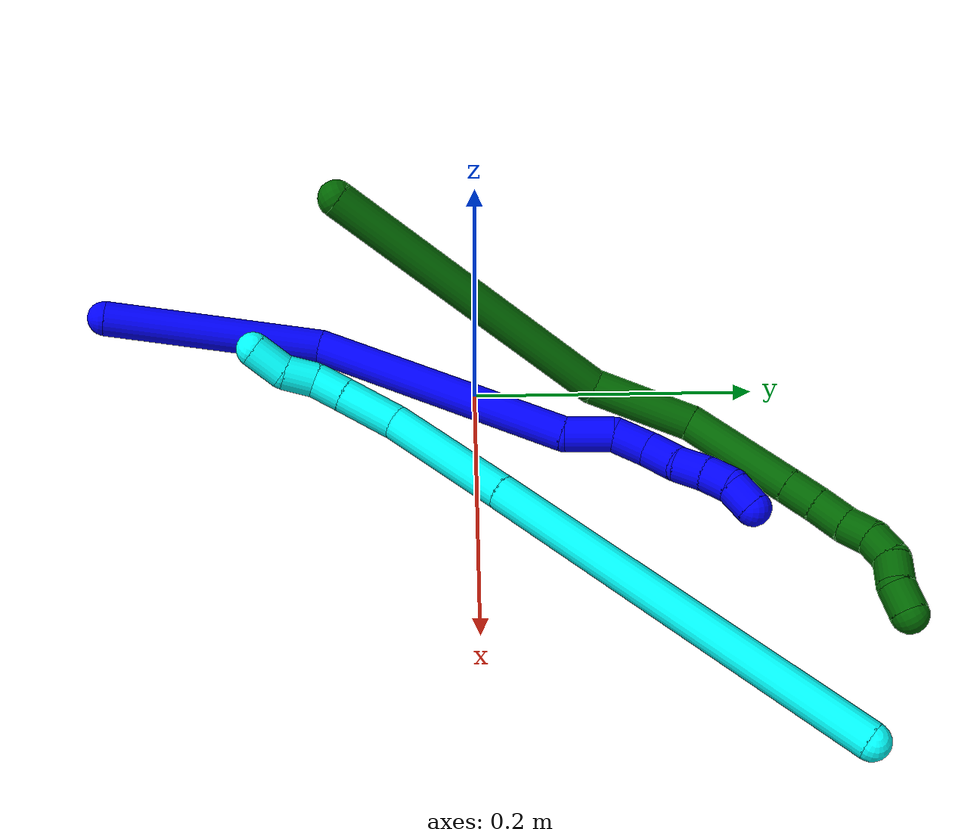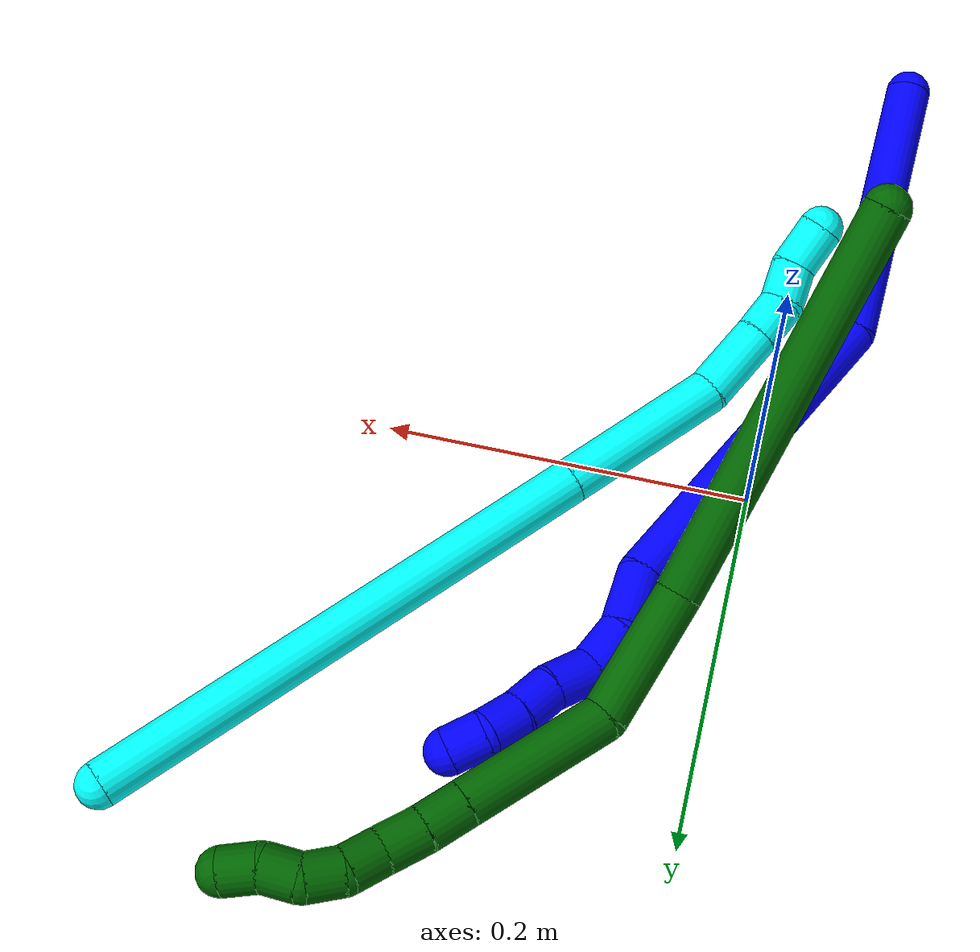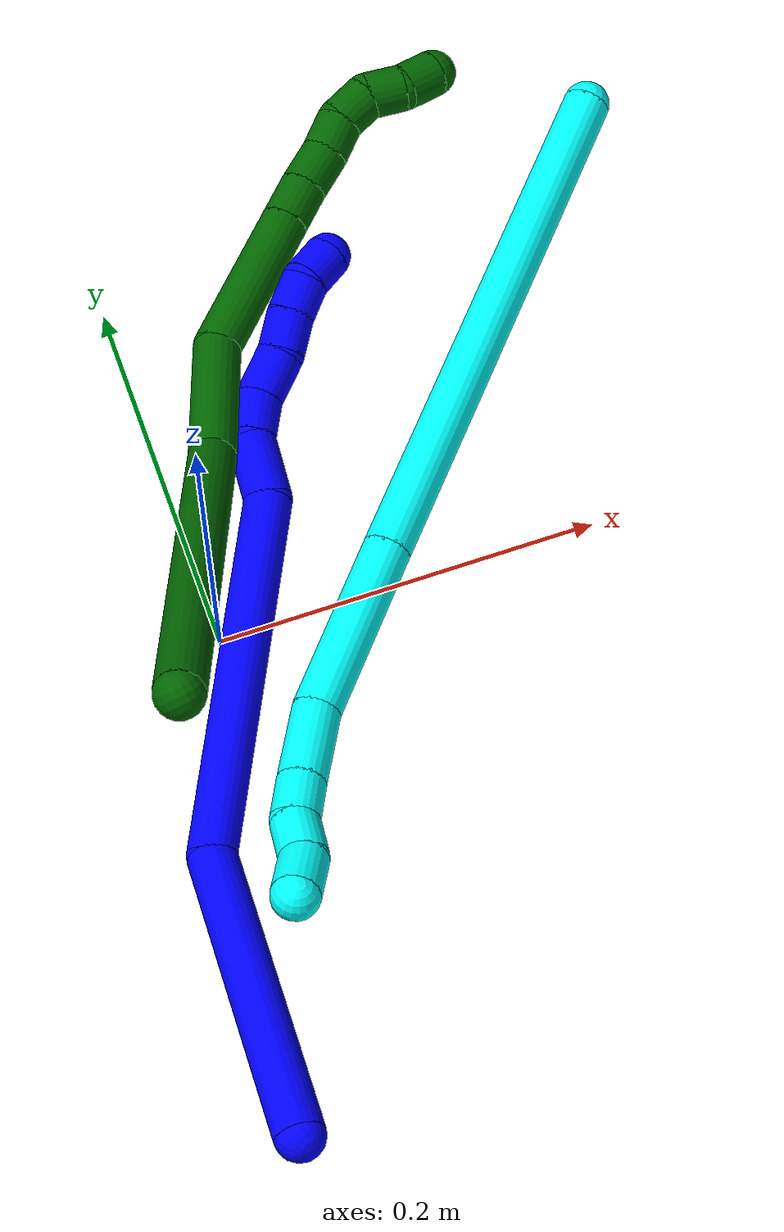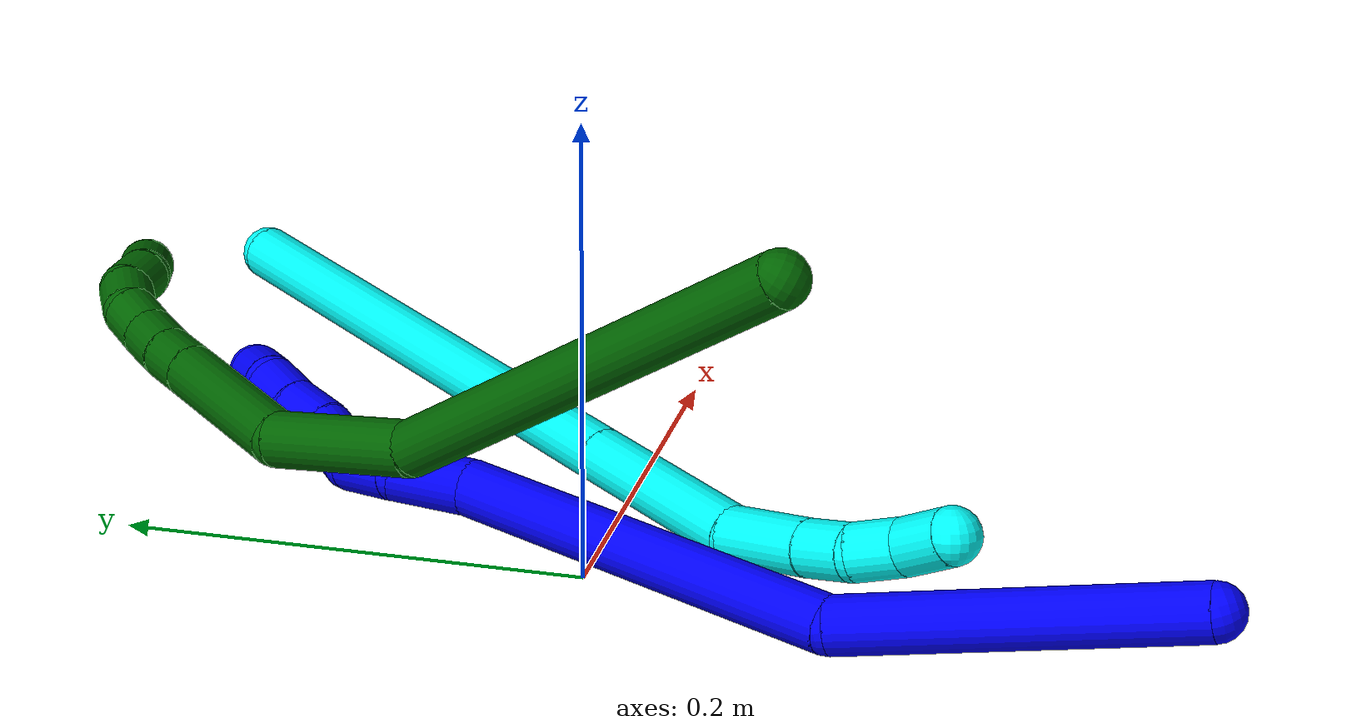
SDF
<sdf version="1.7">
 <world name="default">
  <model name="photoneo_s_sensor">
   <static>1</static>
   <pose>0 0 2 1.57079 1.57079 3.14159</pose>
   <link name="link">
    <inertial><mass>0.1</mass></inertial>
    <sensor name="sensor" type="depth">
     <update_rate>30</update_rate>
     <camera>
      <horizontal_fov>1.22</horizontal_fov>
      <image><width>1920</width><height>1200</height><format>B8G8R8</format></image>
      <clip><near>0.1</near><far>4</far></clip>
      <depth_camera><output>points</output></depth_camera>
     </camera>
     <plugin name="camera_plugin" filename="libgazebo_ros_depth_camera.so">
      <baseline>0.2</baseline>
      <alwaysOn>1</alwaysOn>
      <updateRate>0.0</updateRate>
      <cameraName>camera_ir</cameraName>
      <imageTopicName>/camera/color/image_raw</imageTopicName>
      <cameraInfoTopicName>/camera/color/camera_info</cameraInfoTopicName>
      <depthImageTopicName>/camera/depth/image_raw</depthImageTopicName>
      <depthImageCameraInfoTopicName>/camera/depth/camera_info</depthImageCameraInfoTopicName>
      <pointCloudTopicName>/camera/depth/points</pointCloudTopicName>
      <frameName>fr_optical</frameName>
      <pointCloudCutoff>0.1</pointCloudCutoff>
      <pointCloudCutoffMax>2.0</pointCloudCutoffMax>
      <distortionK1>0</distortionK1>
      <distortionK2>0</distortionK2>
      <distortionK3>0</distortionK3>
      <distortionT1>0</distortionT1>
      <distortionT2>0</distortionT2>
      <CxPrime>0</CxPrime>
      <Cx>0</Cx>
      <Cy>0</Cy>
      <focalLength>0</focalLength>
      <hackBaseline>0</hackBaseline>
     </plugin>
    </sensor>
   </link>
  </model>
  <model name="bin">
   <static>1</static>
   <link name="bottom">
    <collision name="collision-bottom">
     <pose>0 0 -0.01 0 -0 0</pose>
     <geometry><box><size>0.8 0.6 0.02</size></box></geometry>
     <surface>
      <friction><ode><mu>100</mu><mu2>100</mu2></ode></friction>
      <contact><collide_bitmask>65535</collide_bitmask></contact>
     </surface>
    </collision>
   </link>
   <link name="west_wall">
    <collision name="collision-west_wall">
     <pose>-0.41 0 0.1 0 -0 0</pose>
     <geometry><box><size>0.02 0.6 0.2</size></box></geometry>
     <surface>
      <friction><ode><mu>100</mu><mu2>100</mu2></ode></friction>
      <contact><collide_bitmask>65535</collide_bitmask></contact>
     </surface>
    </collision>
   </link>
   <link name="east_wall">
    <collision name="collision-east_wall">
     <pose>0.41 0 0.1 0 -0 0</pose>
     <geometry><box><size>0.02 0.6 0.2</size></box></geometry>
     <surface>
      <friction><ode><mu>100</mu><mu2>100</mu2></ode></friction>
      <contact><collide_bitmask>65535</collide_bitmask></contact>
     </surface>
    </collision>
   </link>
   <link name="south_wall">
    <collision name="collision-south_wall">
     <pose>0 -0.31 0.1 0 -0 0</pose>
     <geometry><box><size>0.8 0.02 0.2</size></box></geometry>
     <surface>
      <friction><ode><mu>100</mu><mu2>100</mu2></ode></friction>
      <contact><collide_bitmask>65535</collide_bitmask></contact>
     </surface>
    </collision>
   </link>
   <link name="north_wall">
    <collision name="collision-north_wall">
     <pose>0 0.31 0.1 0 -0 0</pose>
     <geometry><box><size>0.8 0.02 0.2</size></box></geometry>
     <surface>
      <friction><ode><mu>100</mu><mu2>100</mu2></ode></friction>
      <contact><collide_bitmask>65535</collide_bitmask></contact>
     </surface>
    </collision>
   </link>
  </model>
  <model name="1">
   <static>0</static>
   <link name="1">
    <collision name="collision-cylinder-e_1_1_4">
     <pose>0.012643 0.027854 -0.071792 -2.77149 0.162729 -0.821664</pose>
     <geometry><cylinder><radius>0.0125</radius><length>0.156074</length></cylinder></geometry>
     <surface>
      <friction><ode><mu>1.16</mu><mu2>1.16</mu2><slip1>0</slip1><slip2>0</slip2></ode></friction>
      <contact><ode><kp>1e+06</kp><kd>1</kd><max_vel>0</max_vel><min_depth>0.001</min_depth></ode></contact>
     </surface>
    </collision>
    <visual name="visual-cylinder-e_1_1_4">
     <pose>0.012643 0.027854 -0.071792 -2.77149 0.162729 -0.821664</pose>
     <geometry><cylinder><radius>0.0125</radius><length>0.156074</length></cylinder></geometry>
     <material><ambient>0 0 1 1</ambient></material>
    </visual>
    <collision name="collision-cylinder-e_2_4_5">
     <pose>0.050913 0.124918 -0.206836 -2.31124 0.266813 -0.59108</pose>
     <geometry><cylinder><radius>0.0125</radius><length>0.194398</length></cylinder></geometry>
     <surface>
      <friction><ode><mu>1.16</mu><mu2>1.16</mu2><slip1>0</slip1><slip2>0</slip2></ode></friction>
      <contact><ode><kp>1e+06</kp><kd>1</kd><max_vel>0</max_vel><min_depth>0.001</min_depth></ode></contact>
     </surface>
    </collision>
    <visual name="visual-cylinder-e_2_4_5">
     <pose>0.050913 0.124918 -0.206836 -2.31124 0.266813 -0.59108</pose>
     <geometry><cylinder><radius>0.0125</radius><length>0.194398</length></cylinder></geometry>
     <material><ambient>0 0 1 1</ambient></material>
    </visual>
    <collision name="collision-cylinder-e_3_5_6">
     <pose>0.076388 0.203088 -0.284789 -2.59424 -0.008837 0.031478</pose>
     <geometry><cylinder><radius>0.0125</radius><length>0.034433</length></cylinder></geometry>
     <surface>
      <friction><ode><mu>1.16</mu><mu2>1.16</mu2><slip1>0</slip1><slip2>0</slip2></ode></friction>
      <contact><ode><kp>1e+06</kp><kd>1</kd><max_vel>0</max_vel><min_depth>0.001</min_depth></ode></contact>
     </surface>
    </collision>
    <visual name="visual-cylinder-e_3_5_6">
     <pose>0.076388 0.203088 -0.284789 -2.59424 -0.008837 0.031478</pose>
     <geometry><cylinder><radius>0.0125</radius><length>0.034433</length></cylinder></geometry>
     <material><ambient>0 0 1 1</ambient></material>
    </visual>
    <collision name="collision-cylinder-e_4_6_7">
     <pose>0.080929 0.220459 -0.308475 -2.38922 0.364242 -0.872541</pose>
     <geometry><cylinder><radius>0.0125</radius><length>0.026346</length></cylinder></geometry>
     <surface>
      <friction><ode><mu>1.16</mu><mu2>1.16</mu2><slip1>0</slip1><slip2>0</slip2></ode></friction>
      <contact><ode><kp>1e+06</kp><kd>1</kd><max_vel>0</max_vel><min_depth>0.001</min_depth></ode></contact>
     </surface>
    </collision>
    <visual name="visual-cylinder-e_4_6_7">
     <pose>0.080929 0.220459 -0.308475 -2.38922 0.364242 -0.872541</pose>
     <geometry><cylinder><radius>0.0125</radius><length>0.026346</length></cylinder></geometry>
     <material><ambient>0 0 1 1</ambient></material>
    </visual>
    <collision name="collision-cylinder-e_5_7_8">
     <pose>0.088546 0.24096 -0.321458 -1.89003 0.225786 -0.311229</pose>
     <geometry><cylinder><radius>0.0125</radius><length>0.026129</length></cylinder></geometry>
     <surface>
      <friction><ode><mu>1.16</mu><mu2>1.16</mu2><slip1>0</slip1><slip2>0</slip2></ode></friction>
      <contact><ode><kp>1e+06</kp><kd>1</kd><max_vel>0</max_vel><min_depth>0.001</min_depth></ode></contact>
     </surface>
    </collision>
    <visual name="visual-cylinder-e_5_7_8">
     <pose>0.088546 0.24096 -0.321458 -1.89003 0.225786 -0.311229</pose>
     <geometry><cylinder><radius>0.0125</radius><length>0.026129</length></cylinder></geometry>
     <material><ambient>0 0 1 1</ambient></material>
    </visual>
    <collision name="collision-cylinder-e_6_8_9">
     <pose>0.093443 0.262145 -0.331114 -2.12747 0.182011 -0.325648</pose>
     <geometry><cylinder><radius>0.0125</radius><length>0.021786</length></cylinder></geometry>
     <surface>
      <friction><ode><mu>1.16</mu><mu2>1.16</mu2><slip1>0</slip1><slip2>0</slip2></ode></friction>
      <contact><ode><kp>1e+06</kp><kd>1</kd><max_vel>0</max_vel><min_depth>0.001</min_depth></ode></contact>
     </surface>
    </collision>
    <visual name="visual-cylinder-e_6_8_9">
     <pose>0.093443 0.262145 -0.331114 -2.12747 0.182011 -0.325648</pose>
     <geometry><cylinder><radius>0.0125</radius><length>0.021786</length></cylinder></geometry>
     <material><ambient>0 0 1 1</ambient></material>
    </visual>
    <collision name="collision-cylinder-e_7_9_10">
     <pose>0.097977 0.280249 -0.340765 -1.98781 0.254426 -0.388155</pose>
     <geometry><cylinder><radius>0.0125</radius><length>0.020359</length></cylinder></geometry>
     <surface>
      <friction><ode><mu>1.16</mu><mu2>1.16</mu2><slip1>0</slip1><slip2>0</slip2></ode></friction>
      <contact><ode><kp>1e+06</kp><kd>1</kd><max_vel>0</max_vel><min_depth>0.001</min_depth></ode></contact>
     </surface>
    </collision>
    <visual name="visual-cylinder-e_7_9_10">
     <pose>0.097977 0.280249 -0.340765 -1.98781 0.254426 -0.388155</pose>
     <geometry><cylinder><radius>0.0125</radius><length>0.020359</length></cylinder></geometry>
     <material><ambient>0 0 1 1</ambient></material>
    </visual>
    <collision name="collision-cylinder-e_8_10_2">
     <pose>0.10663 0.296883 -0.347844 -1.95553 0.637193 -0.910263</pose>
     <geometry><cylinder><radius>0.0125</radius><length>0.020474</length></cylinder></geometry>
     <surface>
      <friction><ode><mu>1.16</mu><mu2>1.16</mu2><slip1>0</slip1><slip2>0</slip2></ode></friction>
      <contact><ode><kp>1e+06</kp><kd>1</kd><max_vel>0</max_vel><min_depth>0.001</min_depth></ode></contact>
     </surface>
    </collision>
    <visual name="visual-cylinder-e_8_10_2">
     <pose>0.10663 0.296883 -0.347844 -1.95553 0.637193 -0.910263</pose>
     <geometry><cylinder><radius>0.0125</radius><length>0.020474</length></cylinder></geometry>
     <material><ambient>0 0 1 1</ambient></material>
    </visual>
    <collision name="collision-sphere-2">
     <pose>0.11272 0.30451 -0.350932 0 -0 0</pose>
     <geometry><sphere><radius>0.0125</radius></sphere></geometry>
     <surface>
      <friction><ode><mu>1.16</mu><mu2>1.16</mu2><slip1>0</slip1><slip2>0</slip2></ode></friction>
      <contact><ode><kp>1e+06</kp><kd>1</kd><max_vel>0</max_vel><min_depth>0.001</min_depth></ode></contact>
     </surface>
    </collision>
    <visual name="visual-sphere-2">
     <pose>0.11272 0.30451 -0.350932 0 -0 0</pose>
     <geometry><sphere><radius>0.0125</radius></sphere></geometry>
     <material><ambient>0 0 1 1</ambient></material>
    </visual>
    <collision name="collision-sphere-10">
     <pose>0.100539 0.289257 -0.344756 0 -0 0</pose>
     <geometry><sphere><radius>0.0125</radius></sphere></geometry>
     <surface>
      <friction><ode><mu>1.16</mu><mu2>1.16</mu2><slip1>0</slip1><slip2>0</slip2></ode></friction>
      <contact><ode><kp>1e+06</kp><kd>1</kd><max_vel>0</max_vel><min_depth>0.001</min_depth></ode></contact>
     </surface>
    </collision>
    <visual name="visual-sphere-10">
     <pose>0.100539 0.289257 -0.344756 0 -0 0</pose>
     <geometry><sphere><radius>0.0125</radius></sphere></geometry>
     <material><ambient>0 0 1 1</ambient></material>
    </visual>
    <collision name="collision-sphere-9">
     <pose>0.095415 0.271241 -0.336775 0 -0 0</pose>
     <geometry><sphere><radius>0.0125</radius></sphere></geometry>
     <surface>
      <friction><ode><mu>1.16</mu><mu2>1.16</mu2><slip1>0</slip1><slip2>0</slip2></ode></friction>
      <contact><ode><kp>1e+06</kp><kd>1</kd><max_vel>0</max_vel><min_depth>0.001</min_depth></ode></contact>
     </surface>
    </collision>
    <visual name="visual-sphere-9">
     <pose>0.095415 0.271241 -0.336775 0 -0 0</pose>
     <geometry><sphere><radius>0.0125</radius></sphere></geometry>
     <material><ambient>0 0 1 1</ambient></material>
    </visual>
    <collision name="collision-sphere-4">
     <pose>0.025286 0.055708 -0.143584 0 -0 0</pose>
     <geometry><sphere><radius>0.0125</radius></sphere></geometry>
     <surface>
      <friction><ode><mu>1.16</mu><mu2>1.16</mu2><slip1>0</slip1><slip2>0</slip2></ode></friction>
      <contact><ode><kp>1e+06</kp><kd>1</kd><max_vel>0</max_vel><min_depth>0.001</min_depth></ode></contact>
     </surface>
    </collision>
    <visual name="visual-sphere-4">
     <pose>0.025286 0.055708 -0.143584 0 -0 0</pose>
     <geometry><sphere><radius>0.0125</radius></sphere></geometry>
     <material><ambient>0 0 1 1</ambient></material>
    </visual>
    <collision name="collision-sphere-1">
     <geometry><sphere><radius>0.0125</radius></sphere></geometry>
     <surface>
      <friction><ode><mu>1.16</mu><mu2>1.16</mu2><slip1>0</slip1><slip2>0</slip2></ode></friction>
      <contact><ode><kp>1e+06</kp><kd>1</kd><max_vel>0</max_vel><min_depth>0.001</min_depth></ode></contact>
     </surface>
    </collision>
    <visual name="visual-sphere-1">
     <geometry><sphere><radius>0.0125</radius></sphere></geometry>
     <material><ambient>0 0 1 1</ambient></material>
    </visual>
    <collision name="collision-sphere-8">
     <pose>0.091471 0.25305 -0.325454 0 -0 0</pose>
     <geometry><sphere><radius>0.0125</radius></sphere></geometry>
     <surface>
      <friction><ode><mu>1.16</mu><mu2>1.16</mu2><slip1>0</slip1><slip2>0</slip2></ode></friction>
      <contact><ode><kp>1e+06</kp><kd>1</kd><max_vel>0</max_vel><min_depth>0.001</min_depth></ode></contact>
     </surface>
    </collision>
    <visual name="visual-sphere-8">
     <pose>0.091471 0.25305 -0.325454 0 -0 0</pose>
     <geometry><sphere><radius>0.0125</radius></sphere></geometry>
     <material><ambient>0 0 1 1</ambient></material>
    </visual>
    <collision name="collision-sphere-5">
     <pose>0.076541 0.194128 -0.270088 0 -0 0</pose>
     <geometry><sphere><radius>0.0125</radius></sphere></geometry>
     <surface>
      <friction><ode><mu>1.16</mu><mu2>1.16</mu2><slip1>0</slip1><slip2>0</slip2></ode></friction>
      <contact><ode><kp>1e+06</kp><kd>1</kd><max_vel>0</max_vel><min_depth>0.001</min_depth></ode></contact>
     </surface>
    </collision>
    <visual name="visual-sphere-5">
     <pose>0.076541 0.194128 -0.270088 0 -0 0</pose>
     <geometry><sphere><radius>0.0125</radius></sphere></geometry>
     <material><ambient>0 0 1 1</ambient></material>
    </visual>
    <collision name="collision-sphere-6">
     <pose>0.076236 0.212047 -0.299489 0 -0 0</pose>
     <geometry><sphere><radius>0.0125</radius></sphere></geometry>
     <surface>
      <friction><ode><mu>1.16</mu><mu2>1.16</mu2><slip1>0</slip1><slip2>0</slip2></ode></friction>
      <contact><ode><kp>1e+06</kp><kd>1</kd><max_vel>0</max_vel><min_depth>0.001</min_depth></ode></contact>
     </surface>
    </collision>
    <visual name="visual-sphere-6">
     <pose>0.076236 0.212047 -0.299489 0 -0 0</pose>
     <geometry><sphere><radius>0.0125</radius></sphere></geometry>
     <material><ambient>0 0 1 1</ambient></material>
    </visual>
    <collision name="collision-sphere-7">
     <pose>0.085622 0.22887 -0.317462 0 -0 0</pose>
     <geometry><sphere><radius>0.0125</radius></sphere></geometry>
     <surface>
      <friction><ode><mu>1.16</mu><mu2>1.16</mu2><slip1>0</slip1><slip2>0</slip2></ode></friction>
      <contact><ode><kp>1e+06</kp><kd>1</kd><max_vel>0</max_vel><min_depth>0.001</min_depth></ode></contact>
     </surface>
    </collision>
    <visual name="visual-sphere-7">
     <pose>0.085622 0.22887 -0.317462 0 -0 0</pose>
     <geometry><sphere><radius>0.0125</radius></sphere></geometry>
     <material><ambient>0 0 1 1</ambient></material>
    </visual>
    <inertial>
     <pose>0.050321 0.130447 -0.198039 0 -0 0</pose>
     <mass>0.5</mass>
     <inertia>
      <ixx>0.000164</ixx>
      <ixy>0</ixy>
      <ixz>0</ixz>
      <iyy>-0.001025</iyy>
      <iyz>0</iyz>
      <izz>-0.000813</izz>
     </inertia>
    </inertial>
   </link>
   <pose>-0.045163 -0.265612 0.039503 1.11572 0.91354 -0.002705</pose>
  </model>
  <model name="3">
   <static>0</static>
   <link name="3">
    <collision name="collision-cylinder-e_1_1_4">
     <pose>-0.105706 -0.096552 -0.022024 1.79507 -0.817981 -0.995577</pose>
     <geometry><cylinder><radius>0.0125</radius><length>0.289697</length></cylinder></geometry>
     <surface>
      <friction><ode><mu>1.16</mu><mu2>1.16</mu2><slip1>0</slip1><slip2>0</slip2></ode></friction>
      <contact><ode><kp>1e+06</kp><kd>1</kd><max_vel>0</max_vel><min_depth>0.001</min_depth></ode></contact>
     </surface>
    </collision>
    <visual name="visual-cylinder-e_1_1_4">
     <pose>-0.105706 -0.096552 -0.022024 1.79507 -0.817981 -0.995577</pose>
     <geometry><cylinder><radius>0.0125</radius><length>0.289697</length></cylinder></geometry>
     <material><ambient>0.003922 1 0.996078 1</ambient></material>
    </visual>
    <collision name="collision-cylinder-e_2_4_5">
     <pose>-0.245924 -0.225147 -0.051406 1.79648 -0.809675 -0.987226</pose>
     <geometry><cylinder><radius>0.0125</radius><length>0.09533</length></cylinder></geometry>
     <surface>
      <friction><ode><mu>1.16</mu><mu2>1.16</mu2><slip1>0</slip1><slip2>0</slip2></ode></friction>
      <contact><ode><kp>1e+06</kp><kd>1</kd><max_vel>0</max_vel><min_depth>0.001</min_depth></ode></contact>
     </surface>
    </collision>
    <visual name="visual-cylinder-e_2_4_5">
     <pose>-0.245924 -0.225147 -0.051406 1.79648 -0.809675 -0.987226</pose>
     <geometry><cylinder><radius>0.0125</radius><length>0.09533</length></cylinder></geometry>
     <material><ambient>0.003922 1 0.996078 1</ambient></material>
    </visual>
    <collision name="collision-cylinder-e_3_5_6">
     <pose>-0.292844 -0.274327 -0.057882 1.51945 -0.626024 -0.596548</pose>
     <geometry><cylinder><radius>0.0125</radius><length>0.042352</length></cylinder></geometry>
     <surface>
      <friction><ode><mu>1.16</mu><mu2>1.16</mu2><slip1>0</slip1><slip2>0</slip2></ode></friction>
      <contact><ode><kp>1e+06</kp><kd>1</kd><max_vel>0</max_vel><min_depth>0.001</min_depth></ode></contact>
     </surface>
    </collision>
    <visual name="visual-cylinder-e_3_5_6">
     <pose>-0.292844 -0.274327 -0.057882 1.51945 -0.626024 -0.596548</pose>
     <geometry><cylinder><radius>0.0125</radius><length>0.042352</length></cylinder></geometry>
     <material><ambient>0.003922 1 0.996078 1</ambient></material>
    </visual>
    <collision name="collision-cylinder-e_4_6_7">
     <pose>-0.311742 -0.301007 -0.05597 1.46318 -0.594607 -0.53686</pose>
     <geometry><cylinder><radius>0.0125</radius><length>0.023173</length></cylinder></geometry>
     <surface>
      <friction><ode><mu>1.16</mu><mu2>1.16</mu2><slip1>0</slip1><slip2>0</slip2></ode></friction>
      <contact><ode><kp>1e+06</kp><kd>1</kd><max_vel>0</max_vel><min_depth>0.001</min_depth></ode></contact>
     </surface>
    </collision>
    <visual name="visual-cylinder-e_4_6_7">
     <pose>-0.311742 -0.301007 -0.05597 1.46318 -0.594607 -0.53686</pose>
     <geometry><cylinder><radius>0.0125</radius><length>0.023173</length></cylinder></geometry>
     <material><ambient>0.003922 1 0.996078 1</ambient></material>
    </visual>
    <collision name="collision-cylinder-e_5_7_8">
     <pose>-0.321169 -0.321515 -0.052717 1.37085 -0.256661 -0.210247</pose>
     <geometry><cylinder><radius>0.0125</radius><length>0.023134</length></cylinder></geometry>
     <surface>
      <friction><ode><mu>1.16</mu><mu2>1.16</mu2><slip1>0</slip1><slip2>0</slip2></ode></friction>
      <contact><ode><kp>1e+06</kp><kd>1</kd><max_vel>0</max_vel><min_depth>0.001</min_depth></ode></contact>
     </surface>
    </collision>
    <visual name="visual-cylinder-e_5_7_8">
     <pose>-0.321169 -0.321515 -0.052717 1.37085 -0.256661 -0.210247</pose>
     <geometry><cylinder><radius>0.0125</radius><length>0.023134</length></cylinder></geometry>
     <material><ambient>0.003922 1 0.996078 1</ambient></material>
    </visual>
    <collision name="collision-cylinder-e_6_8_2">
     <pose>-0.331535 -0.342357 -0.045984 1.14243 -0.600028 -0.39251</pose>
     <geometry><cylinder><radius>0.0125</radius><length>0.026314</length></cylinder></geometry>
     <surface>
      <friction><ode><mu>1.16</mu><mu2>1.16</mu2><slip1>0</slip1><slip2>0</slip2></ode></friction>
      <contact><ode><kp>1e+06</kp><kd>1</kd><max_vel>0</max_vel><min_depth>0.001</min_depth></ode></contact>
     </surface>
    </collision>
    <visual name="visual-cylinder-e_6_8_2">
     <pose>-0.331535 -0.342357 -0.045984 1.14243 -0.600028 -0.39251</pose>
     <geometry><cylinder><radius>0.0125</radius><length>0.026314</length></cylinder></geometry>
     <material><ambient>0.003922 1 0.996078 1</ambient></material>
    </visual>
    <collision name="collision-sphere-2">
     <pose>-0.338964 -0.352235 -0.041474 0 -0 0</pose>
     <geometry><sphere><radius>0.0125</radius></sphere></geometry>
     <surface>
      <friction><ode><mu>1.16</mu><mu2>1.16</mu2><slip1>0</slip1><slip2>0</slip2></ode></friction>
      <contact><ode><kp>1e+06</kp><kd>1</kd><max_vel>0</max_vel><min_depth>0.001</min_depth></ode></contact>
     </surface>
    </collision>
    <visual name="visual-sphere-2">
     <pose>-0.338964 -0.352235 -0.041474 0 -0 0</pose>
     <geometry><sphere><radius>0.0125</radius></sphere></geometry>
     <material><ambient>0.003922 1 0.996078 1</ambient></material>
    </visual>
    <collision name="collision-sphere-4">
     <pose>-0.211411 -0.193105 -0.044049 0 -0 0</pose>
     <geometry><sphere><radius>0.0125</radius></sphere></geometry>
     <surface>
      <friction><ode><mu>1.16</mu><mu2>1.16</mu2><slip1>0</slip1><slip2>0</slip2></ode></friction>
      <contact><ode><kp>1e+06</kp><kd>1</kd><max_vel>0</max_vel><min_depth>0.001</min_depth></ode></contact>
     </surface>
    </collision>
    <visual name="visual-sphere-4">
     <pose>-0.211411 -0.193105 -0.044049 0 -0 0</pose>
     <geometry><sphere><radius>0.0125</radius></sphere></geometry>
     <material><ambient>0.003922 1 0.996078 1</ambient></material>
    </visual>
    <collision name="collision-sphere-1">
     <geometry><sphere><radius>0.0125</radius></sphere></geometry>
     <surface>
      <friction><ode><mu>1.16</mu><mu2>1.16</mu2><slip1>0</slip1><slip2>0</slip2></ode></friction>
      <contact><ode><kp>1e+06</kp><kd>1</kd><max_vel>0</max_vel><min_depth>0.001</min_depth></ode></contact>
     </surface>
    </collision>
    <visual name="visual-sphere-1">
     <geometry><sphere><radius>0.0125</radius></sphere></geometry>
     <material><ambient>0.003922 1 0.996078 1</ambient></material>
    </visual>
    <collision name="collision-sphere-8">
     <pose>-0.324105 -0.33248 -0.050495 0 -0 0</pose>
     <geometry><sphere><radius>0.0125</radius></sphere></geometry>
     <surface>
      <friction><ode><mu>1.16</mu><mu2>1.16</mu2><slip1>0</slip1><slip2>0</slip2></ode></friction>
      <contact><ode><kp>1e+06</kp><kd>1</kd><max_vel>0</max_vel><min_depth>0.001</min_depth></ode></contact>
     </surface>
    </collision>
    <visual name="visual-sphere-8">
     <pose>-0.324105 -0.33248 -0.050495 0 -0 0</pose>
     <geometry><sphere><radius>0.0125</radius></sphere></geometry>
     <material><ambient>0.003922 1 0.996078 1</ambient></material>
    </visual>
    <collision name="collision-sphere-5">
     <pose>-0.280437 -0.25719 -0.058762 0 -0 0</pose>
     <geometry><sphere><radius>0.0125</radius></sphere></geometry>
     <surface>
      <friction><ode><mu>1.16</mu><mu2>1.16</mu2><slip1>0</slip1><slip2>0</slip2></ode></friction>
      <contact><ode><kp>1e+06</kp><kd>1</kd><max_vel>0</max_vel><min_depth>0.001</min_depth></ode></contact>
     </surface>
    </collision>
    <visual name="visual-sphere-5">
     <pose>-0.280437 -0.25719 -0.058762 0 -0 0</pose>
     <geometry><sphere><radius>0.0125</radius></sphere></geometry>
     <material><ambient>0.003922 1 0.996078 1</ambient></material>
    </visual>
    <collision name="collision-sphere-6">
     <pose>-0.305252 -0.291465 -0.057001 0 -0 0</pose>
     <geometry><sphere><radius>0.0125</radius></sphere></geometry>
     <surface>
      <friction><ode><mu>1.16</mu><mu2>1.16</mu2><slip1>0</slip1><slip2>0</slip2></ode></friction>
      <contact><ode><kp>1e+06</kp><kd>1</kd><max_vel>0</max_vel><min_depth>0.001</min_depth></ode></contact>
     </surface>
    </collision>
    <visual name="visual-sphere-6">
     <pose>-0.305252 -0.291465 -0.057001 0 -0 0</pose>
     <geometry><sphere><radius>0.0125</radius></sphere></geometry>
     <material><ambient>0.003922 1 0.996078 1</ambient></material>
    </visual>
    <collision name="collision-sphere-7">
     <pose>-0.318233 -0.31055 -0.054939 0 -0 0</pose>
     <geometry><sphere><radius>0.0125</radius></sphere></geometry>
     <surface>
      <friction><ode><mu>1.16</mu><mu2>1.16</mu2><slip1>0</slip1><slip2>0</slip2></ode></friction>
      <contact><ode><kp>1e+06</kp><kd>1</kd><max_vel>0</max_vel><min_depth>0.001</min_depth></ode></contact>
     </surface>
    </collision>
    <visual name="visual-sphere-7">
     <pose>-0.318233 -0.31055 -0.054939 0 -0 0</pose>
     <geometry><sphere><radius>0.0125</radius></sphere></geometry>
     <material><ambient>0.003922 1 0.996078 1</ambient></material>
    </visual>
    <inertial>
     <pose>-0.179694 -0.168949 -0.034918 0 -0 0</pose>
     <mass>0.5</mass>
     <inertia>
      <ixx>-0.000447</ixx>
      <ixy>0</ixy>
      <ixz>0</ixz>
      <iyy>-0.000235</iyy>
      <iyz>0</iyz>
      <izz>0.002967</izz>
     </inertia>
    </inertial>
   </link>
   <pose>0.284922 0.234603 0.011499 -0.050605 0.161461 0.115366</pose>
  </model>
  <model name="6">
   <static>0</static>
   <link name="6">
    <collision name="collision-cylinder-e_1_1_4">
     <pose>0.094953 0.039711 0.036211 -0.831467 1.05577 -0.503879</pose>
     <geometry><cylinder><radius>0.0125</radius><length>0.218213</length></cylinder></geometry>
     <surface>
      <friction><ode><mu>1.16</mu><mu2>1.16</mu2><slip1>0</slip1><slip2>0</slip2></ode></friction>
      <contact><ode><kp>1e+06</kp><kd>1</kd><max_vel>0</max_vel><min_depth>0.001</min_depth></ode></contact>
     </surface>
    </collision>
    <visual name="visual-cylinder-e_1_1_4">
     <pose>0.094953 0.039711 0.036211 -0.831467 1.05577 -0.503879</pose>
     <geometry><cylinder><radius>0.0125</radius><length>0.218213</length></cylinder></geometry>
     <material><ambient>0 0.392157 0.003922 1</ambient></material>
    </visual>
    <collision name="collision-cylinder-e_2_4_5">
     <pose>0.217746 0.084334 0.095409 -0.210547 0.869579 -0.098069</pose>
     <geometry><cylinder><radius>0.0125</radius><length>0.072874</length></cylinder></geometry>
     <surface>
      <friction><ode><mu>1.16</mu><mu2>1.16</mu2><slip1>0</slip1><slip2>0</slip2></ode></friction>
      <contact><ode><kp>1e+06</kp><kd>1</kd><max_vel>0</max_vel><min_depth>0.001</min_depth></ode></contact>
     </surface>
    </collision>
    <visual name="visual-cylinder-e_2_4_5">
     <pose>0.217746 0.084334 0.095409 -0.210547 0.869579 -0.098069</pose>
     <geometry><cylinder><radius>0.0125</radius><length>0.072874</length></cylinder></geometry>
     <material><ambient>0 0.392157 0.003922 1</ambient></material>
    </visual>
    <collision name="collision-cylinder-e_3_5_6">
     <pose>0.278876 0.076571 0.138669 0.558841 0.947962 0.292279</pose>
     <geometry><cylinder><radius>0.0125</radius><length>0.081972</length></cylinder></geometry>
     <surface>
      <friction><ode><mu>1.16</mu><mu2>1.16</mu2><slip1>0</slip1><slip2>0</slip2></ode></friction>
      <contact><ode><kp>1e+06</kp><kd>1</kd><max_vel>0</max_vel><min_depth>0.001</min_depth></ode></contact>
     </surface>
    </collision>
    <visual name="visual-cylinder-e_3_5_6">
     <pose>0.278876 0.076571 0.138669 0.558841 0.947962 0.292279</pose>
     <geometry><cylinder><radius>0.0125</radius><length>0.081972</length></cylinder></geometry>
     <material><ambient>0 0.392157 0.003922 1</ambient></material>
    </visual>
    <collision name="collision-cylinder-e_4_6_7">
     <pose>0.321568 0.06037 0.164636 0.55407 0.951763 0.291026</pose>
     <geometry><cylinder><radius>0.0125</radius><length>0.023088</length></cylinder></geometry>
     <surface>
      <friction><ode><mu>1.16</mu><mu2>1.16</mu2><slip1>0</slip1><slip2>0</slip2></ode></friction>
      <contact><ode><kp>1e+06</kp><kd>1</kd><max_vel>0</max_vel><min_depth>0.001</min_depth></ode></contact>
     </surface>
    </collision>
    <visual name="visual-cylinder-e_4_6_7">
     <pose>0.321568 0.06037 0.164636 0.55407 0.951763 0.291026</pose>
     <geometry><cylinder><radius>0.0125</radius><length>0.023088</length></cylinder></geometry>
     <material><ambient>0 0.392157 0.003922 1</ambient></material>
    </visual>
    <collision name="collision-cylinder-e_5_7_8">
     <pose>0.340426 0.052452 0.175674 0.688369 0.93932 0.35992</pose>
     <geometry><cylinder><radius>0.0125</radius><length>0.023431</length></cylinder></geometry>
     <surface>
      <friction><ode><mu>1.16</mu><mu2>1.16</mu2><slip1>0</slip1><slip2>0</slip2></ode></friction>
      <contact><ode><kp>1e+06</kp><kd>1</kd><max_vel>0</max_vel><min_depth>0.001</min_depth></ode></contact>
     </surface>
    </collision>
    <visual name="visual-cylinder-e_5_7_8">
     <pose>0.340426 0.052452 0.175674 0.688369 0.93932 0.35992</pose>
     <geometry><cylinder><radius>0.0125</radius><length>0.023431</length></cylinder></geometry>
     <material><ambient>0 0.392157 0.003922 1</ambient></material>
    </visual>
    <collision name="collision-cylinder-e_6_8_9">
     <pose>0.356879 0.043696 0.186888 0.638822 0.763137 0.263862</pose>
     <geometry><cylinder><radius>0.0125</radius><length>0.020247</length></cylinder></geometry>
     <surface>
      <friction><ode><mu>1.16</mu><mu2>1.16</mu2><slip1>0</slip1><slip2>0</slip2></ode></friction>
      <contact><ode><kp>1e+06</kp><kd>1</kd><max_vel>0</max_vel><min_depth>0.001</min_depth></ode></contact>
     </surface>
    </collision>
    <visual name="visual-cylinder-e_6_8_9">
     <pose>0.356879 0.043696 0.186888 0.638822 0.763137 0.263862</pose>
     <geometry><cylinder><radius>0.0125</radius><length>0.020247</length></cylinder></geometry>
     <material><ambient>0 0.392157 0.003922 1</ambient></material>
    </visual>
    <collision name="collision-cylinder-e_7_9_10">
     <pose>0.371476 0.033271 0.195422 1.15726 0.854048 0.577822</pose>
     <geometry><cylinder><radius>0.0125</radius><length>0.020158</length></cylinder></geometry>
     <surface>
      <friction><ode><mu>1.16</mu><mu2>1.16</mu2><slip1>0</slip1><slip2>0</slip2></ode></friction>
      <contact><ode><kp>1e+06</kp><kd>1</kd><max_vel>0</max_vel><min_depth>0.001</min_depth></ode></contact>
     </surface>
    </collision>
    <visual name="visual-cylinder-e_7_9_10">
     <pose>0.371476 0.033271 0.195422 1.15726 0.854048 0.577822</pose>
     <geometry><cylinder><radius>0.0125</radius><length>0.020158</length></cylinder></geometry>
     <material><ambient>0 0.392157 0.003922 1</ambient></material>
    </visual>
    <collision name="collision-cylinder-e_8_10_11">
     <pose>0.385824 0.020211 0.195731 1.89506 0.740718 0.990478</pose>
     <geometry><cylinder><radius>0.0125</radius><length>0.020004</length></cylinder></geometry>
     <surface>
      <friction><ode><mu>1.16</mu><mu2>1.16</mu2><slip1>0</slip1><slip2>0</slip2></ode></friction>
      <contact><ode><kp>1e+06</kp><kd>1</kd><max_vel>0</max_vel><min_depth>0.001</min_depth></ode></contact>
     </surface>
    </collision>
    <visual name="visual-cylinder-e_8_10_11">
     <pose>0.385824 0.020211 0.195731 1.89506 0.740718 0.990478</pose>
     <geometry><cylinder><radius>0.0125</radius><length>0.020004</length></cylinder></geometry>
     <material><ambient>0 0.392157 0.003922 1</ambient></material>
    </visual>
    <collision name="collision-cylinder-e_9_11_2">
     <pose>0.401351 0.008412 0.193182 1.61192 1.0698 1.10623</pose>
     <geometry><cylinder><radius>0.0125</radius><length>0.020013</length></cylinder></geometry>
     <surface>
      <friction><ode><mu>1.16</mu><mu2>1.16</mu2><slip1>0</slip1><slip2>0</slip2></ode></friction>
      <contact><ode><kp>1e+06</kp><kd>1</kd><max_vel>0</max_vel><min_depth>0.001</min_depth></ode></contact>
     </surface>
    </collision>
    <visual name="visual-cylinder-e_9_11_2">
     <pose>0.401351 0.008412 0.193182 1.61192 1.0698 1.10623</pose>
     <geometry><cylinder><radius>0.0125</radius><length>0.020013</length></cylinder></geometry>
     <material><ambient>0 0.392157 0.003922 1</ambient></material>
    </visual>
    <collision name="collision-sphere-2">
     <pose>0.410128 0.00361 0.192984 0 -0 0</pose>
     <geometry><sphere><radius>0.0125</radius></sphere></geometry>
     <surface>
      <friction><ode><mu>1.16</mu><mu2>1.16</mu2><slip1>0</slip1><slip2>0</slip2></ode></friction>
      <contact><ode><kp>1e+06</kp><kd>1</kd><max_vel>0</max_vel><min_depth>0.001</min_depth></ode></contact>
     </surface>
    </collision>
    <visual name="visual-sphere-2">
     <pose>0.410128 0.00361 0.192984 0 -0 0</pose>
     <geometry><sphere><radius>0.0125</radius></sphere></geometry>
     <material><ambient>0 0.392157 0.003922 1</ambient></material>
    </visual>
    <collision name="collision-sphere-11">
     <pose>0.392574 0.013214 0.193379 0 -0 0</pose>
     <geometry><sphere><radius>0.0125</radius></sphere></geometry>
     <surface>
      <friction><ode><mu>1.16</mu><mu2>1.16</mu2><slip1>0</slip1><slip2>0</slip2></ode></friction>
      <contact><ode><kp>1e+06</kp><kd>1</kd><max_vel>0</max_vel><min_depth>0.001</min_depth></ode></contact>
     </surface>
    </collision>
    <visual name="visual-sphere-11">
     <pose>0.392574 0.013214 0.193379 0 -0 0</pose>
     <geometry><sphere><radius>0.0125</radius></sphere></geometry>
     <material><ambient>0 0.392157 0.003922 1</ambient></material>
    </visual>
    <collision name="collision-sphere-10">
     <pose>0.379075 0.027208 0.198083 0 -0 0</pose>
     <geometry><sphere><radius>0.0125</radius></sphere></geometry>
     <surface>
      <friction><ode><mu>1.16</mu><mu2>1.16</mu2><slip1>0</slip1><slip2>0</slip2></ode></friction>
      <contact><ode><kp>1e+06</kp><kd>1</kd><max_vel>0</max_vel><min_depth>0.001</min_depth></ode></contact>
     </surface>
    </collision>
    <visual name="visual-sphere-10">
     <pose>0.379075 0.027208 0.198083 0 -0 0</pose>
     <geometry><sphere><radius>0.0125</radius></sphere></geometry>
     <material><ambient>0 0.392157 0.003922 1</ambient></material>
    </visual>
    <collision name="collision-sphere-9">
     <pose>0.363877 0.039334 0.192761 0 -0 0</pose>
     <geometry><sphere><radius>0.0125</radius></sphere></geometry>
     <surface>
      <friction><ode><mu>1.16</mu><mu2>1.16</mu2><slip1>0</slip1><slip2>0</slip2></ode></friction>
      <contact><ode><kp>1e+06</kp><kd>1</kd><max_vel>0</max_vel><min_depth>0.001</min_depth></ode></contact>
     </surface>
    </collision>
    <visual name="visual-sphere-9">
     <pose>0.363877 0.039334 0.192761 0 -0 0</pose>
     <geometry><sphere><radius>0.0125</radius></sphere></geometry>
     <material><ambient>0 0.392157 0.003922 1</ambient></material>
    </visual>
    <collision name="collision-sphere-4">
     <pose>0.189907 0.079421 0.072421 0 -0 0</pose>
     <geometry><sphere><radius>0.0125</radius></sphere></geometry>
     <surface>
      <friction><ode><mu>1.16</mu><mu2>1.16</mu2><slip1>0</slip1><slip2>0</slip2></ode></friction>
      <contact><ode><kp>1e+06</kp><kd>1</kd><max_vel>0</max_vel><min_depth>0.001</min_depth></ode></contact>
     </surface>
    </collision>
    <visual name="visual-sphere-4">
     <pose>0.189907 0.079421 0.072421 0 -0 0</pose>
     <geometry><sphere><radius>0.0125</radius></sphere></geometry>
     <material><ambient>0 0.392157 0.003922 1</ambient></material>
    </visual>
    <collision name="collision-sphere-1">
     <geometry><sphere><radius>0.0125</radius></sphere></geometry>
     <surface>
      <friction><ode><mu>1.16</mu><mu2>1.16</mu2><slip1>0</slip1><slip2>0</slip2></ode></friction>
      <contact><ode><kp>1e+06</kp><kd>1</kd><max_vel>0</max_vel><min_depth>0.001</min_depth></ode></contact>
     </surface>
    </collision>
    <visual name="visual-sphere-1">
     <geometry><sphere><radius>0.0125</radius></sphere></geometry>
     <material><ambient>0 0.392157 0.003922 1</ambient></material>
    </visual>
    <collision name="collision-sphere-8">
     <pose>0.349882 0.048058 0.181015 0 -0 0</pose>
     <geometry><sphere><radius>0.0125</radius></sphere></geometry>
     <surface>
      <friction><ode><mu>1.16</mu><mu2>1.16</mu2><slip1>0</slip1><slip2>0</slip2></ode></friction>
      <contact><ode><kp>1e+06</kp><kd>1</kd><max_vel>0</max_vel><min_depth>0.001</min_depth></ode></contact>
     </surface>
    </collision>
    <visual name="visual-sphere-8">
     <pose>0.349882 0.048058 0.181015 0 -0 0</pose>
     <geometry><sphere><radius>0.0125</radius></sphere></geometry>
     <material><ambient>0 0.392157 0.003922 1</ambient></material>
    </visual>
    <collision name="collision-sphere-5">
     <pose>0.245586 0.089247 0.118397 0 -0 0</pose>
     <geometry><sphere><radius>0.0125</radius></sphere></geometry>
     <surface>
      <friction><ode><mu>1.16</mu><mu2>1.16</mu2><slip1>0</slip1><slip2>0</slip2></ode></friction>
      <contact><ode><kp>1e+06</kp><kd>1</kd><max_vel>0</max_vel><min_depth>0.001</min_depth></ode></contact>
     </surface>
    </collision>
    <visual name="visual-sphere-5">
     <pose>0.245586 0.089247 0.118397 0 -0 0</pose>
     <geometry><sphere><radius>0.0125</radius></sphere></geometry>
     <material><ambient>0 0.392157 0.003922 1</ambient></material>
    </visual>
    <collision name="collision-sphere-6">
     <pose>0.312166 0.063894 0.15894 0 -0 0</pose>
     <geometry><sphere><radius>0.0125</radius></sphere></geometry>
     <surface>
      <friction><ode><mu>1.16</mu><mu2>1.16</mu2><slip1>0</slip1><slip2>0</slip2></ode></friction>
      <contact><ode><kp>1e+06</kp><kd>1</kd><max_vel>0</max_vel><min_depth>0.001</min_depth></ode></contact>
     </surface>
    </collision>
    <visual name="visual-sphere-6">
     <pose>0.312166 0.063894 0.15894 0 -0 0</pose>
     <geometry><sphere><radius>0.0125</radius></sphere></geometry>
     <material><ambient>0 0.392157 0.003922 1</ambient></material>
    </visual>
    <collision name="collision-sphere-7">
     <pose>0.33097 0.056846 0.170332 0 -0 0</pose>
     <geometry><sphere><radius>0.0125</radius></sphere></geometry>
     <surface>
      <friction><ode><mu>1.16</mu><mu2>1.16</mu2><slip1>0</slip1><slip2>0</slip2></ode></friction>
      <contact><ode><kp>1e+06</kp><kd>1</kd><max_vel>0</max_vel><min_depth>0.001</min_depth></ode></contact>
     </surface>
    </collision>
    <visual name="visual-sphere-7">
     <pose>0.33097 0.056846 0.170332 0 -0 0</pose>
     <geometry><sphere><radius>0.0125</radius></sphere></geometry>
     <material><ambient>0 0.392157 0.003922 1</ambient></material>
    </visual>
    <inertial>
     <pose>0.210626 0.051677 0.099287 0 -0 0</pose>
     <mass>0.5</mass>
     <inertia>
      <ixx>0.000265</ixx>
      <ixy>0</ixy>
      <ixz>0</ixz>
      <iyy>0.000677</iyy>
      <iyz>0</iyz>
      <izz>-0.001123</izz>
     </inertia>
    </inertial>
   </link>
   <pose>-0.038975 -0.089882 0.157938 -0.924986 0.571442 0.599249</pose>
  </model>
 </world>
</sdf>
